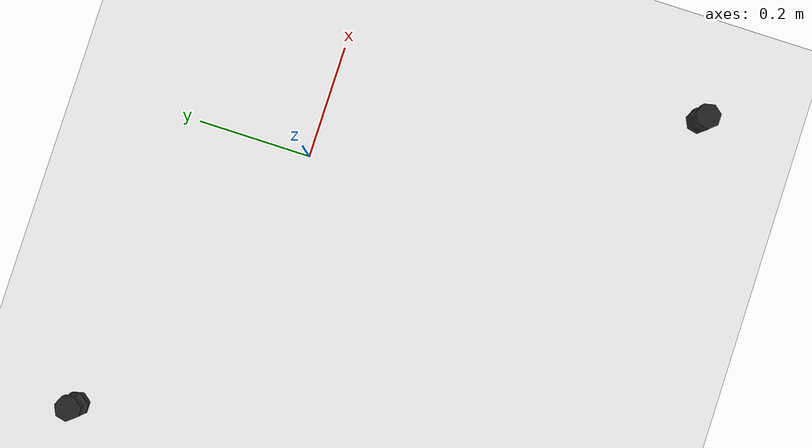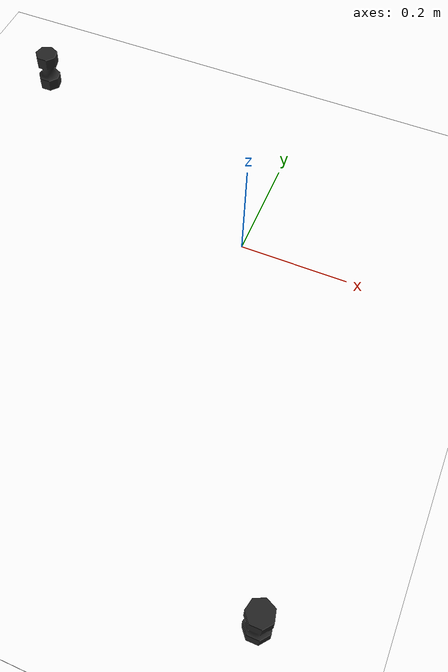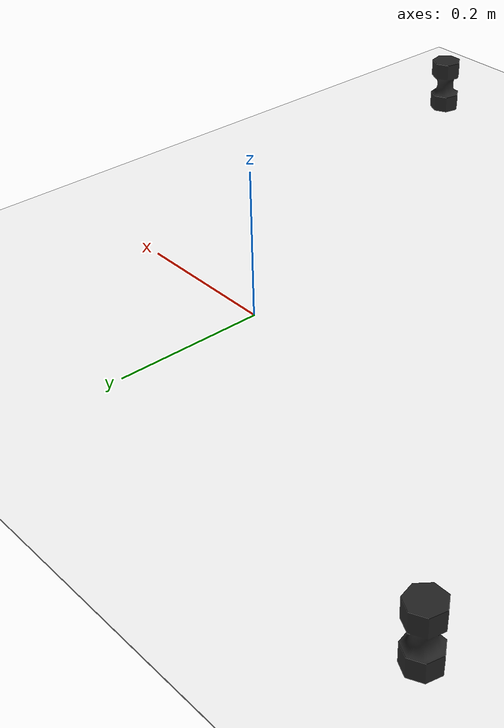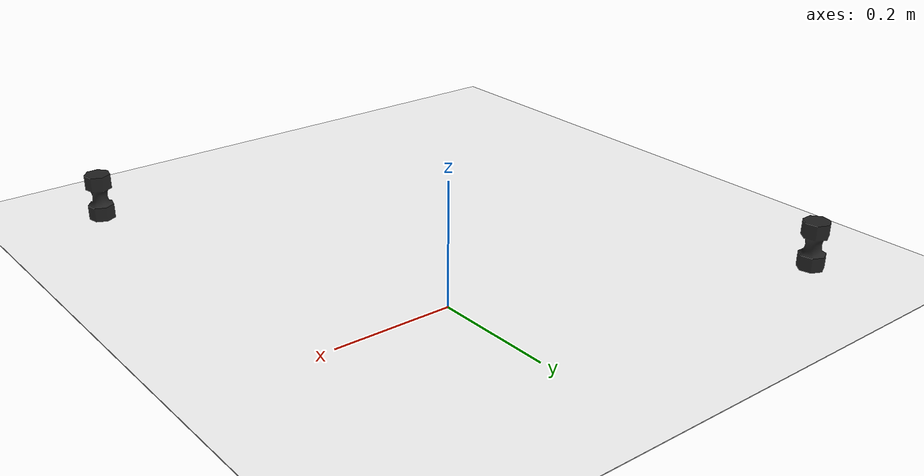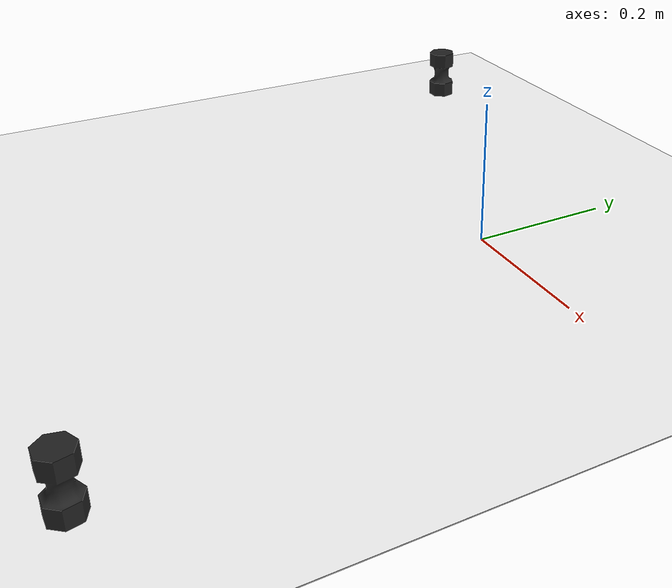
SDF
<?xml version="1.0" ?>
<sdf version="1.4">
  <world name="default">
    <gui>
      <camera name="user_camera">
        <pose>0.285817 -0.003429 3.229345 0 1.5708 -3.1415</pose>
      </camera>
    </gui>
    <scene>
      <ambient>0.5 0.5 0.5 1.0</ambient>
      <shadows>0</shadows>
    </scene>
    <include>
      <uri>model://ground_plane</uri>
    </include>
    <include>
      <uri>model://sun</uri>
    </include>
    <include>
      <uri>model://racetrack18</uri>
      <name>race_track18</name>
      <pose>0 0 0 0 0 0</pose>
    </include>
    <include>
      <uri>model://object</uri>
      <name>object</name>
      <pose>-0.539450 0.228900 0.0 0 0 0</pose>
    </include>
    <include>
      <uri>model://object</uri>
      <name>object2</name>
      <pose>0.256337 -0.643757 0.0 0 0 0</pose>
    </include>

  </world>
</sdf>

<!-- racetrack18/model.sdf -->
<sdf version='1.6'>
  <model name='race_track18'>
    <static>true</static>
    <link name='link'>
      <visual name='visual'>
        <geometry>
          <box>
            <size>2.894 3.50 0.000553</size>
          </box>
        </geometry>
        <material>
          <script>
            <name>RaceTrack18/track18</name>
	    <uri>model://racetrack18/materials/scripts</uri>
            <uri>model://racetrack18/materials/textures</uri>
          </script>
          <ambient>1 1 1 1</ambient>
          <diffuse>1 1 1 1</diffuse>
          <specular>0.01 0.01 0.01 1</specular>
          <emissive>1 1 1 1</emissive>
        </material>
        <transparency>0</transparency>
      </visual>
      <collision name='collision'>
        <geometry>
          <box>
            <size>1.477 1.750 0.000553</size>
          </box>
        </geometry>
	<surface>
          <friction>
            <ode>
              <mu>100</mu>
              <mu2>50</mu2>
            </ode>
          </friction>
        </surface>
      </collision>
    </link>
  </model>
</sdf>

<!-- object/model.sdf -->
<sdf version="1.6">
  <model name="object">
      <static>false</static>
      <link name="body">
        <pose>0 0 0 0 0 0</pose>

        <inertial>
          <mass>0.05</mass>
          <pose>0.01 0.021 0.04 0 0 0</pose>
          <inertia>
            <ixx>0.0003</ixx>
            <iyy>0.0002</iyy>
            <izz>0.0002</izz>
          </inertia>
      </inertial>

        <visual name="vis">
          <geometry>
            <mesh>
         	<uri>model://object/robot_object.dae</uri>
          </mesh>
          </geometry>
        </visual>

        <collision name="col">
          <geometry>
            <mesh>
             <uri>model://object/robot_object.dae</uri>
            </mesh>
          </geometry>
        </collision>
      </link>
  </model>
</sdf>
